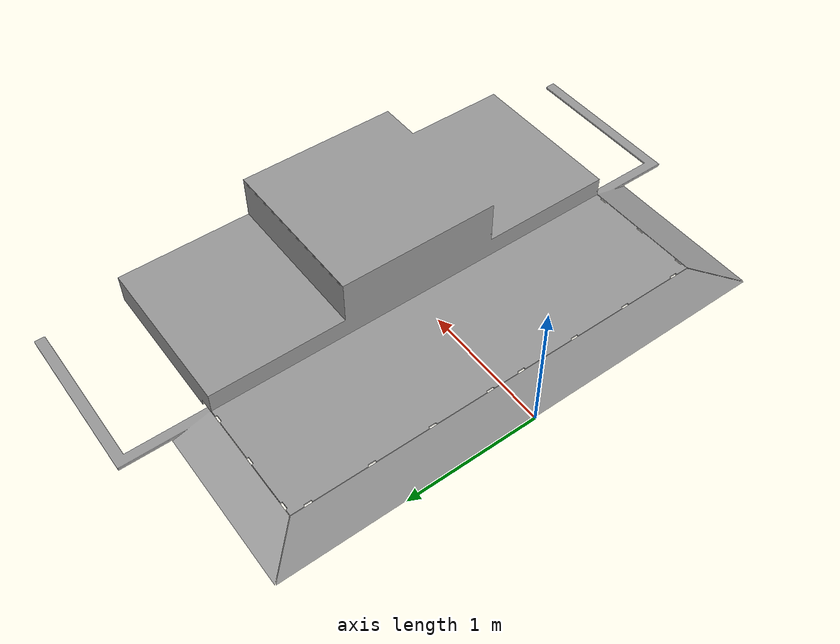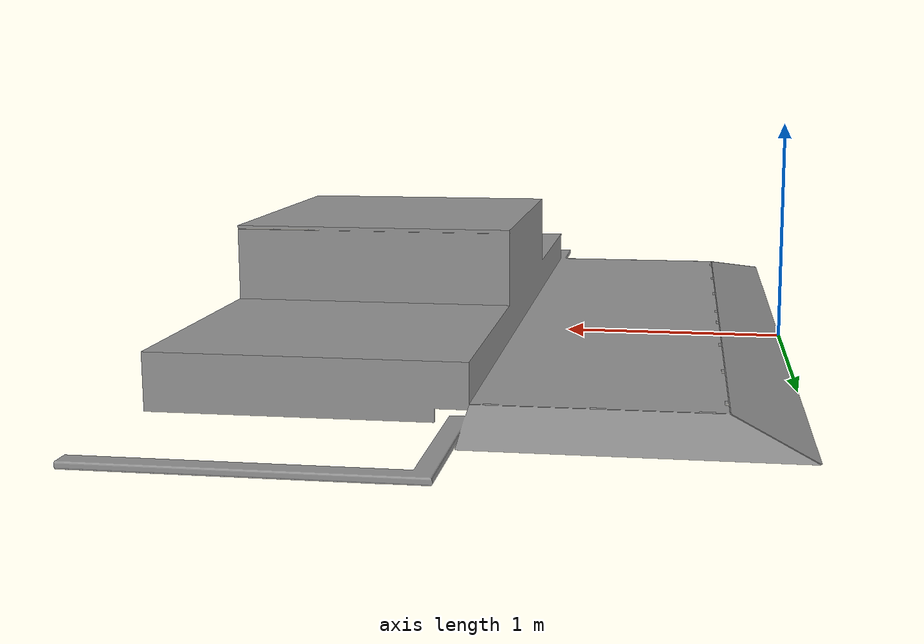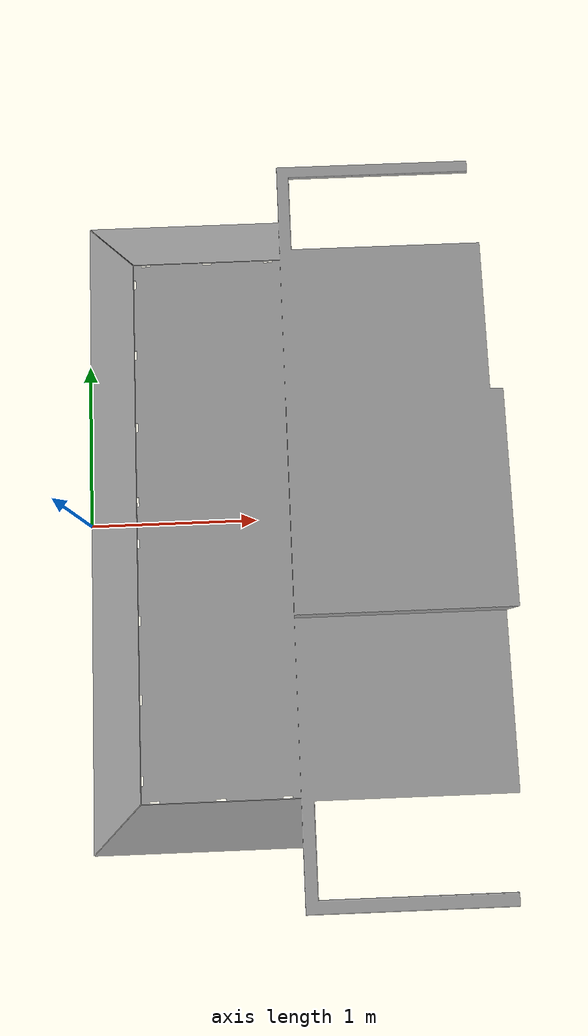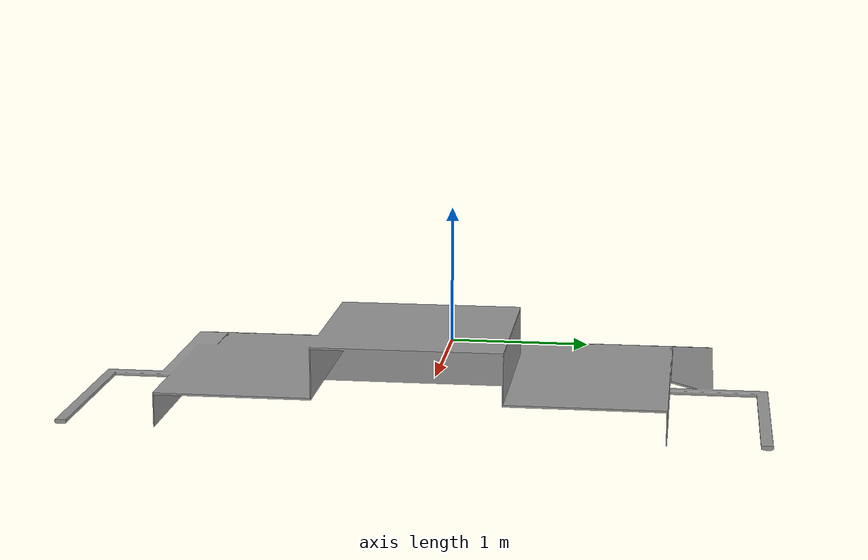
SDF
<?xml version="1.0" encoding="utf-8"?>
<sdf version="1.6">
  <model name="Platform2">
    <pose>0 0 0.00682500000003534 3.14 0 3.14</pose>
    <static>true</static>
    <link name="Platform2">
      <gravity>1</gravity>
      <self_collide>0</self_collide>
      <pose>-1.24298353379576 2.02357767840611E-05 -0.189223141554041 -1.57079632679489 1.31075078419103E-15 3.14159265358979</pose>
      <must_be_base_link>1</must_be_base_link>
      <velocity_decay>
        <linear>0</linear>
        <angular>0</angular>
      </velocity_decay>
      <inertial>
        <mass>129.621459954073</mass>
        <pose>0 0 0 0 0 0</pose>
        <inertia>
          <ixx>0.31777392929299</ixx>
          <ixy>2.23655744959457</ixy>
          <ixz>0.000291576796853991</ixz>
          <iyy>15.7413458152453</iyy>
          <iyz>4.14277321018438E-05</iyz>
          <izz>16.0591197337366</izz>
        </inertia>
      </inertial>
      <collision name="Platform_collision">
        <pose>0.50791280494679 -0.189223141554051 0.384851402443448 0 0 0</pose>
        <geometry>
          <mesh>
            <scale>1 1 1</scale>
            <uri>model://Platform2/meshes/Platform_col.STL</uri>
          </mesh>
        </geometry>
        <surface>
          <contact>
            <ode />
          </contact>
          <friction>
            <ode>
              <mu>1</mu>
              <mu2>1</mu2>
            </ode>
          </friction>
        </surface>
      </collision>
      <visual name="Platform_visual">
        <pose>0.50791280494679 -0.189223141554051 0.384851402443448 0 0 0</pose>
        <material>
          <ambient>0.6 0.6 0.6 1</ambient>
          <diffuse>0.6 0.6 0.6 1</diffuse>
        </material>
        <geometry>

          <mesh>
            <scale>1 1 1</scale>
            <uri>model://Platform2/meshes/Platform.STL</uri>
          </mesh>
        </geometry>
      </visual>

    </link>
  </model>
</sdf>
